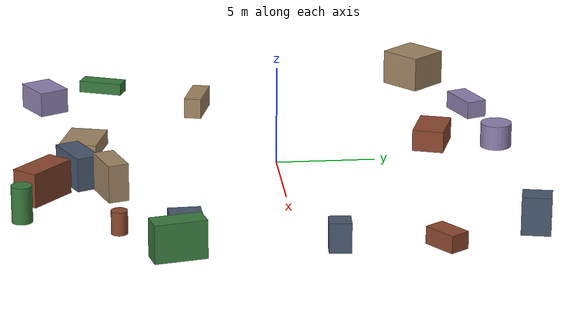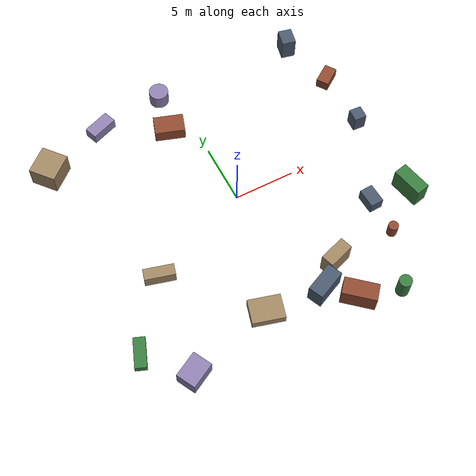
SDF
<sdf version="1.10">
 <world name="robotx_task1_uav_view">
  <gravity>0 0 -9.81</gravity>
  <physics name="physics" type="ode">
   <max_step_size>0.002</max_step_size>
   <real_time_factor>1.0</real_time_factor>
  </physics>
  <scene>
   <ambient>0.18 0.22 0.18 1.0</ambient>
   <background>0.35 0.55 0.40 1.0</background>
   <shadows>true</shadows>
   <grid>false</grid>
  </scene>
  <light name="sun" type="directional">
   <pose>0 0 300 0 0 0</pose>
   <diffuse>0.55 0.75 0.60 1.0</diffuse>
   <specular>0.28 0.45 0.32 1.0</specular>
   <direction>0.20 -0.06 -1.0</direction>
   <attenuation>
    <range>2500</range>
    <constant>0.85</constant>
    <linear>0.001</linear>
    <quadratic>0.00005</quadratic>
   </attenuation>
  </light>
  <plugin filename="gz-sim-physics-system" name="gz::sim::systems::Physics"/>
  <plugin filename="gz-sim-user-commands-system" name="gz::sim::systems::UserCommands"/>
  <plugin filename="gz-sim-scene-broadcaster-system" name="gz::sim::systems::SceneBroadcaster"/>
  <plugin filename="gz-sim-sensors-system" name="gz::sim::systems::Sensors">
   <render_engine>ogre2</render_engine>
  </plugin>
  <model name="scene_clutter_box_000">
   <static>true</static>
   <pose>-8.452 -3.496 0.555 0 0 1.304162</pose>
   <link name="link">
    <visual name="v">
     <geometry><box><size>0.910 2.424 1.069</size></box></geometry>
     <material><ambient>0.45 0.38 0.32 1.0</ambient><diffuse>0.62 0.52 0.38 1.0</diffuse></material>
    </visual>
   </link>
  </model>
  <model name="scene_clutter_box_001">
   <static>true</static>
   <pose>12.226 1.788 0.761 0 0 1.509032</pose>
   <link name="link">
    <visual name="v">
     <geometry><box><size>1.064 1.014 1.482</size></box></geometry>
     <material><ambient>0.18 0.22 0.28 1.0</ambient><diffuse>0.28 0.34 0.42 1.0</diffuse></material>
    </visual>
   </link>
  </model>
  <model name="scene_clutter_box_002">
   <static>true</static>
   <pose>-1.992 8.253 0.573 0 0 -0.317932</pose>
   <link name="link">
    <visual name="v">
     <geometry><box><size>2.487 1.608 1.106</size></box></geometry>
     <material><ambient>0.35 0.16 0.12 1.0</ambient><diffuse>0.55 0.28 0.18 1.0</diffuse></material>
    </visual>
   </link>
  </model>
  <model name="scene_clutter_box_003">
   <static>true</static>
   <pose>-12.363 -8.436 0.334 0 0 -0.367383</pose>
   <link name="link">
    <visual name="v">
     <geometry><box><size>0.925 2.354 0.627</size></box></geometry>
     <material><ambient>0.12 0.30 0.14 1.0</ambient><diffuse>0.22 0.48 0.24 1.0</diffuse></material>
    </visual>
   </link>
  </model>
  <model name="scene_clutter_cyl_004">
   <static>true</static>
   <pose>-1.396 11.505 0.678 0 0 3.057967</pose>
   <link name="link">
    <visual name="v">
     <geometry><cylinder><radius>0.799</radius><length>1.256</length></cylinder></geometry>
     <material><ambient>0.40 0.35 0.50 1.0</ambient><diffuse>0.55 0.50 0.68 1.0</diffuse></material>
    </visual>
   </link>
  </model>
  <model name="scene_clutter_box_005">
   <static>true</static>
   <pose>-2.647 -9.711 0.396 0 0 1.298749</pose>
   <link name="link">
    <visual name="v">
     <geometry><box><size>1.919 2.571 0.752</size></box></geometry>
     <material><ambient>0.45 0.38 0.32 1.0</ambient><diffuse>0.62 0.52 0.38 1.0</diffuse></material>
    </visual>
   </link>
  </model>
  <model name="scene_clutter_box_006">
   <static>true</static>
   <pose>2.088 -10.095 0.876 0 0 -2.721853</pose>
   <link name="link">
    <visual name="v">
     <geometry><box><size>2.505 1.214 1.711</size></box></geometry>
     <material><ambient>0.18 0.22 0.28 1.0</ambient><diffuse>0.28 0.34 0.42 1.0</diffuse></material>
    </visual>
   </link>
  </model>
  <model name="scene_clutter_cyl_007">
   <static>true</static>
   <pose>9.295 -8.312 0.631 0 0 -0.093271</pose>
   <link name="link">
    <visual name="v">
     <geometry><cylinder><radius>0.400</radius><length>1.162</length></cylinder></geometry>
     <material><ambient>0.35 0.16 0.12 1.0</ambient><diffuse>0.55 0.28 0.18 1.0</diffuse></material>
    </visual>
   </link>
  </model>
  <model name="scene_clutter_box_008">
   <static>true</static>
   <pose>12.502 -5.730 0.968 0 0 -2.928404</pose>
   <link name="link">
    <visual name="v">
     <geometry><box><size>1.135 2.545 1.896</size></box></geometry>
     <material><ambient>0.12 0.30 0.14 1.0</ambient><diffuse>0.22 0.48 0.24 1.0</diffuse></material>
    </visual>
   </link>
  </model>
  <model name="scene_clutter_box_009">
   <static>true</static>
   <pose>-7.039 10.899 0.478 0 0 1.932390</pose>
   <link name="link">
    <visual name="v">
     <geometry><box><size>1.097 2.229 0.916</size></box></geometry>
     <material><ambient>0.40 0.35 0.50 1.0</ambient><diffuse>0.55 0.50 0.68 1.0</diffuse></material>
    </visual>
   </link>
  </model>
  <model name="scene_clutter_box_010">
   <static>true</static>
   <pose>-12.340 8.762 0.938 0 0 2.279675</pose>
   <link name="link">
    <visual name="v">
     <geometry><box><size>2.207 2.318 1.836</size></box></geometry>
     <material><ambient>0.45 0.38 0.32 1.0</ambient><diffuse>0.62 0.52 0.38 1.0</diffuse></material>
    </visual>
   </link>
  </model>
  <model name="scene_clutter_box_011">
   <static>true</static>
   <pose>10.808 11.284 0.967 0 0 -1.783553</pose>
   <link name="link">
    <visual name="v">
     <geometry><box><size>1.422 1.163 1.893</size></box></geometry>
     <material><ambient>0.18 0.22 0.28 1.0</ambient><diffuse>0.28 0.34 0.42 1.0</diffuse></material>
    </visual>
   </link>
  </model>
  <model name="scene_clutter_box_012">
   <static>true</static>
   <pose>12.254 6.795 0.455 0 0 0.612767</pose>
   <link name="link">
    <visual name="v">
     <geometry><box><size>1.759 1.049 0.871</size></box></geometry>
     <material><ambient>0.35 0.16 0.12 1.0</ambient><diffuse>0.55 0.28 0.18 1.0</diffuse></material>
    </visual>
   </link>
  </model>
  <model name="scene_clutter_cyl_013">
   <static>true</static>
   <pose>7.311 -12.871 0.966 0 0 2.560558</pose>
   <link name="link">
    <visual name="v">
     <geometry><cylinder><radius>0.508</radius><length>1.832</length></cylinder></geometry>
     <material><ambient>0.12 0.30 0.14 1.0</ambient><diffuse>0.22 0.48 0.24 1.0</diffuse></material>
    </visual>
   </link>
  </model>
  <model name="scene_clutter_box_014">
   <static>true</static>
   <pose>-9.542 -11.612 0.668 0 0 -1.080255</pose>
   <link name="link">
    <visual name="v">
     <geometry><box><size>1.604 2.103 1.296</size></box></geometry>
     <material><ambient>0.40 0.35 0.50 1.0</ambient><diffuse>0.55 0.50 0.68 1.0</diffuse></material>
    </visual>
   </link>
  </model>
  <model name="scene_clutter_box_015">
   <static>true</static>
   <pose>3.991 -8.516 0.970 0 0 0.315712</pose>
   <link name="link">
    <visual name="v">
     <geometry><box><size>2.174 1.038 1.900</size></box></geometry>
     <material><ambient>0.45 0.38 0.32 1.0</ambient><diffuse>0.62 0.52 0.38 1.0</diffuse></material>
    </visual>
   </link>
  </model>
  <model name="scene_clutter_box_016">
   <static>true</static>
   <pose>9.263 -5.208 0.535 0 0 1.619186</pose>
   <link name="link">
    <visual name="v">
     <geometry><box><size>1.588 1.083 1.030</size></box></geometry>
     <material><ambient>0.18 0.22 0.28 1.0</ambient><diffuse>0.28 0.34 0.42 1.0</diffuse></material>
    </visual>
   </link>
  </model>
  <model name="scene_clutter_box_017">
   <static>true</static>
   <pose>4.077 -11.864 0.883 0 0 -0.713351</pose>
   <link name="link">
    <visual name="v">
     <geometry><box><size>2.692 1.355 1.726</size></box></geometry>
     <material><ambient>0.35 0.16 0.12 1.0</ambient><diffuse>0.55 0.28 0.18 1.0</diffuse></material>
    </visual>
   </link>
  </model>
  <model name="uav_dataset_camera">
   <static>false</static>
   <pose>0 0 26 0 0 0</pose>
   <plugin filename="librobotx_overhead_motion_plugin.dylib" name="robotx::OverheadMotionPlugin">
    <radius_x_m>11.94473</radius_x_m>
    <radius_y_m>9.67545</radius_y_m>
    <angular_speed_rad_s>0.063200</angular_speed_rad_s>
    <phase_rad>3.175575</phase_rad>
    <z_wobble_m>0.09764</z_wobble_m>
    <z_wobble_hz>0.07456</z_wobble_hz>
    <z_wobble_phase_rad>1.266129</z_wobble_phase_rad>
   </plugin>
   <link name="camera_link">
    <gravity>false</gravity>
    <sensor name="top_down_rgb" type="camera">
     <always_on>true</always_on>
     <update_rate>20</update_rate>
     <pose>0 0 0 0 1.57079632679 0</pose>
     <camera>
      <horizontal_fov>1.05</horizontal_fov>
      <image><width>1920</width><height>1080</height><format>R8G8B8</format></image>
      <clip><near>0.2</near><far>600</far></clip>
     </camera>
     <topic>/robotx/uav/camera/image_raw</topic>
     <visualize>true</visualize>
    </sensor>
   </link>
  </model>
 </world>
</sdf>
